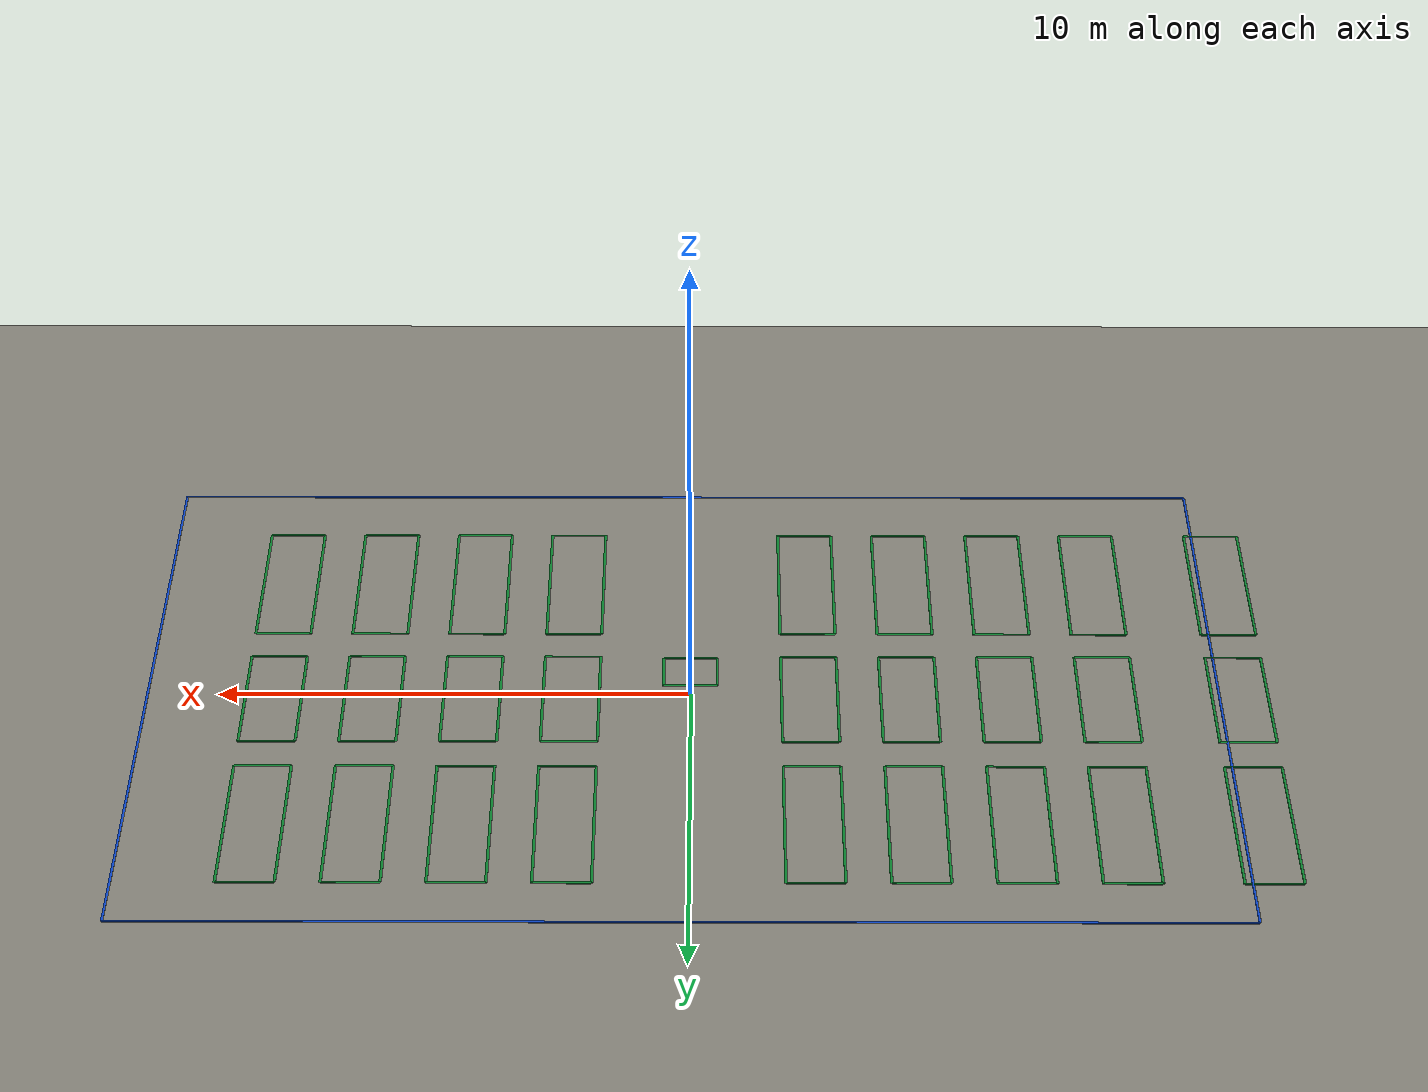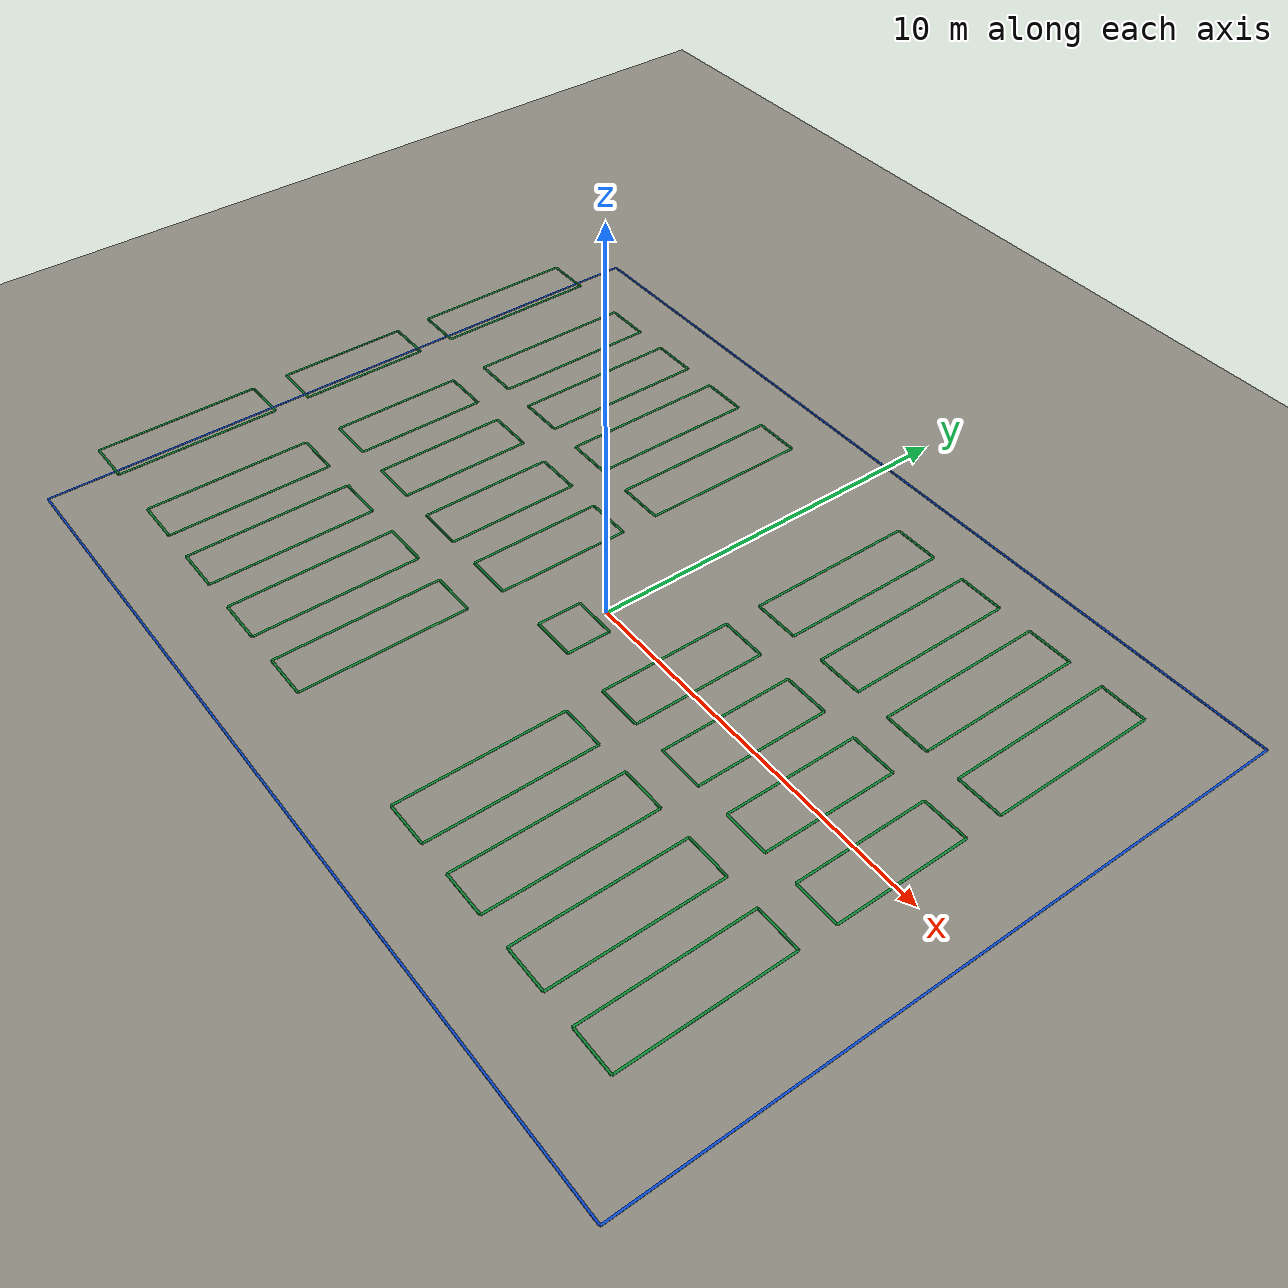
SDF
<sdf version="1.8">
 <world name="warehouse_full_4cam_recfg_lit">
  <model name="ground_plane">
   <static>true</static>
   <link name="link">
    <collision name="collision">
     <geometry><plane><normal>0 0 1</normal><size>24.5 20.5</size></plane></geometry>
    </collision>
    <visual name="visual">
     <geometry><plane><normal>0 0 1</normal><size>24.5 20.5</size></plane></geometry>
     <material>
      <ambient>0.56 0.55 0.51 1</ambient>
      <diffuse>0.56 0.55 0.51 1</diffuse>
      <specular>0.05 0.05 0.05 1</specular>
     </material>
    </visual>
   </link>
  </model>
  <model name="known_driveable_boundary">
   <static>true</static>
   <link name="bnd_s">
    <pose>0.150 -8.600 0.035 0 0 0</pose>
    <visual name="visual">
     <geometry><box><size>22.700 0.050 0.014</size></box></geometry>
     <material><ambient>0.05 0.30 0.85 1</ambient><diffuse>0.05 0.30 0.85 1</diffuse></material>
    </visual>
   </link>
   <link name="bnd_n">
    <pose>0.150 8.600 0.035 0 0 0</pose>
    <visual name="visual">
     <geometry><box><size>22.700 0.050 0.014</size></box></geometry>
     <material><ambient>0.05 0.30 0.85 1</ambient><diffuse>0.05 0.30 0.85 1</diffuse></material>
    </visual>
   </link>
   <link name="bnd_w">
    <pose>-11.200 0.000 0.035 0 0 0</pose>
    <visual name="visual">
     <geometry><box><size>0.050 17.200 0.014</size></box></geometry>
     <material><ambient>0.05 0.30 0.85 1</ambient><diffuse>0.05 0.30 0.85 1</diffuse></material>
    </visual>
   </link>
   <link name="bnd_e">
    <pose>11.500 0.000 0.035 0 0 0</pose>
    <visual name="visual">
     <geometry><box><size>0.050 17.200 0.014</size></box></geometry>
     <material><ambient>0.05 0.30 0.85 1</ambient><diffuse>0.05 0.30 0.85 1</diffuse></material>
    </visual>
   </link>
   <link name="nogo_W1_south_outline_s">
    <pose>-8.825 -6.820 0.035 0 0 0</pose>
    <visual name="visual">
     <geometry><box><size>1.190 0.055 0.014</size></box></geometry>
     <material><ambient>0.05 0.55 0.20 1</ambient><diffuse>0.05 0.55 0.20 1</diffuse></material>
    </visual>
   </link>
   <link name="nogo_W1_south_outline_n">
    <pose>-8.825 -2.480 0.035 0 0 0</pose>
    <visual name="visual">
     <geometry><box><size>1.190 0.055 0.014</size></box></geometry>
     <material><ambient>0.05 0.55 0.20 1</ambient><diffuse>0.05 0.55 0.20 1</diffuse></material>
    </visual>
   </link>
   <link name="nogo_W1_south_outline_w">
    <pose>-9.420 -4.650 0.035 0 0 0</pose>
    <visual name="visual">
     <geometry><box><size>0.055 4.340 0.014</size></box></geometry>
     <material><ambient>0.05 0.55 0.20 1</ambient><diffuse>0.05 0.55 0.20 1</diffuse></material>
    </visual>
   </link>
   <link name="nogo_W1_south_outline_e">
    <pose>-8.230 -4.650 0.035 0 0 0</pose>
    <visual name="visual">
     <geometry><box><size>0.055 4.340 0.014</size></box></geometry>
     <material><ambient>0.05 0.55 0.20 1</ambient><diffuse>0.05 0.55 0.20 1</diffuse></material>
    </visual>
   </link>
   <link name="nogo_W1_mid_outline_s">
    <pose>-8.825 -1.520 0.035 0 0 0</pose>
    <visual name="visual">
     <geometry><box><size>1.190 0.055 0.014</size></box></geometry>
     <material><ambient>0.05 0.55 0.20 1</ambient><diffuse>0.05 0.55 0.20 1</diffuse></material>
    </visual>
   </link>
   <link name="nogo_W1_mid_outline_n">
    <pose>-8.825 1.920 0.035 0 0 0</pose>
    <visual name="visual">
     <geometry><box><size>1.190 0.055 0.014</size></box></geometry>
     <material><ambient>0.05 0.55 0.20 1</ambient><diffuse>0.05 0.55 0.20 1</diffuse></material>
    </visual>
   </link>
   <link name="nogo_W1_mid_outline_w">
    <pose>-9.420 0.200 0.035 0 0 0</pose>
    <visual name="visual">
     <geometry><box><size>0.055 3.440 0.014</size></box></geometry>
     <material><ambient>0.05 0.55 0.20 1</ambient><diffuse>0.05 0.55 0.20 1</diffuse></material>
    </visual>
   </link>
   <link name="nogo_W1_mid_outline_e">
    <pose>-8.230 0.200 0.035 0 0 0</pose>
    <visual name="visual">
     <geometry><box><size>0.055 3.440 0.014</size></box></geometry>
     <material><ambient>0.05 0.55 0.20 1</ambient><diffuse>0.05 0.55 0.20 1</diffuse></material>
    </visual>
   </link>
   <link name="nogo_W1_north_outline_s">
    <pose>-8.825 2.880 0.035 0 0 0</pose>
    <visual name="visual">
     <geometry><box><size>1.190 0.055 0.014</size></box></geometry>
     <material><ambient>0.05 0.55 0.20 1</ambient><diffuse>0.05 0.55 0.20 1</diffuse></material>
    </visual>
   </link>
   <link name="nogo_W1_north_outline_n">
    <pose>-8.825 7.220 0.035 0 0 0</pose>
    <visual name="visual">
     <geometry><box><size>1.190 0.055 0.014</size></box></geometry>
     <material><ambient>0.05 0.55 0.20 1</ambient><diffuse>0.05 0.55 0.20 1</diffuse></material>
    </visual>
   </link>
   <link name="nogo_W1_north_outline_w">
    <pose>-9.420 5.050 0.035 0 0 0</pose>
    <visual name="visual">
     <geometry><box><size>0.055 4.340 0.014</size></box></geometry>
     <material><ambient>0.05 0.55 0.20 1</ambient><diffuse>0.05 0.55 0.20 1</diffuse></material>
    </visual>
   </link>
   <link name="nogo_W1_north_outline_e">
    <pose>-8.230 5.050 0.035 0 0 0</pose>
    <visual name="visual">
     <geometry><box><size>0.055 4.340 0.014</size></box></geometry>
     <material><ambient>0.05 0.55 0.20 1</ambient><diffuse>0.05 0.55 0.20 1</diffuse></material>
    </visual>
   </link>
   <link name="nogo_W2_south_outline_s">
    <pose>-6.725 -6.820 0.035 0 0 0</pose>
    <visual name="visual">
     <geometry><box><size>1.190 0.055 0.014</size></box></geometry>
     <material><ambient>0.05 0.55 0.20 1</ambient><diffuse>0.05 0.55 0.20 1</diffuse></material>
    </visual>
   </link>
   <link name="nogo_W2_south_outline_n">
    <pose>-6.725 -2.480 0.035 0 0 0</pose>
    <visual name="visual">
     <geometry><box><size>1.190 0.055 0.014</size></box></geometry>
     <material><ambient>0.05 0.55 0.20 1</ambient><diffuse>0.05 0.55 0.20 1</diffuse></material>
    </visual>
   </link>
   <link name="nogo_W2_south_outline_w">
    <pose>-7.320 -4.650 0.035 0 0 0</pose>
    <visual name="visual">
     <geometry><box><size>0.055 4.340 0.014</size></box></geometry>
     <material><ambient>0.05 0.55 0.20 1</ambient><diffuse>0.05 0.55 0.20 1</diffuse></material>
    </visual>
   </link>
   <link name="nogo_W2_south_outline_e">
    <pose>-6.130 -4.650 0.035 0 0 0</pose>
    <visual name="visual">
     <geometry><box><size>0.055 4.340 0.014</size></box></geometry>
     <material><ambient>0.05 0.55 0.20 1</ambient><diffuse>0.05 0.55 0.20 1</diffuse></material>
    </visual>
   </link>
   <link name="nogo_W2_mid_outline_s">
    <pose>-6.725 -1.520 0.035 0 0 0</pose>
    <visual name="visual">
     <geometry><box><size>1.190 0.055 0.014</size></box></geometry>
     <material><ambient>0.05 0.55 0.20 1</ambient><diffuse>0.05 0.55 0.20 1</diffuse></material>
    </visual>
   </link>
   <link name="nogo_W2_mid_outline_n">
    <pose>-6.725 1.920 0.035 0 0 0</pose>
    <visual name="visual">
     <geometry><box><size>1.190 0.055 0.014</size></box></geometry>
     <material><ambient>0.05 0.55 0.20 1</ambient><diffuse>0.05 0.55 0.20 1</diffuse></material>
    </visual>
   </link>
   <link name="nogo_W2_mid_outline_w">
    <pose>-7.320 0.200 0.035 0 0 0</pose>
    <visual name="visual">
     <geometry><box><size>0.055 3.440 0.014</size></box></geometry>
     <material><ambient>0.05 0.55 0.20 1</ambient><diffuse>0.05 0.55 0.20 1</diffuse></material>
    </visual>
   </link>
   <link name="nogo_W2_mid_outline_e">
    <pose>-6.130 0.200 0.035 0 0 0</pose>
    <visual name="visual">
     <geometry><box><size>0.055 3.440 0.014</size></box></geometry>
     <material><ambient>0.05 0.55 0.20 1</ambient><diffuse>0.05 0.55 0.20 1</diffuse></material>
    </visual>
   </link>
   <link name="nogo_W2_north_outline_s">
    <pose>-6.725 2.880 0.035 0 0 0</pose>
    <visual name="visual">
     <geometry><box><size>1.190 0.055 0.014</size></box></geometry>
     <material><ambient>0.05 0.55 0.20 1</ambient><diffuse>0.05 0.55 0.20 1</diffuse></material>
    </visual>
   </link>
   <link name="nogo_W2_north_outline_n">
    <pose>-6.725 7.220 0.035 0 0 0</pose>
    <visual name="visual">
     <geometry><box><size>1.190 0.055 0.014</size></box></geometry>
     <material><ambient>0.05 0.55 0.20 1</ambient><diffuse>0.05 0.55 0.20 1</diffuse></material>
    </visual>
   </link>
   <link name="nogo_W2_north_outline_w">
    <pose>-7.320 5.050 0.035 0 0 0</pose>
    <visual name="visual">
     <geometry><box><size>0.055 4.340 0.014</size></box></geometry>
     <material><ambient>0.05 0.55 0.20 1</ambient><diffuse>0.05 0.55 0.20 1</diffuse></material>
    </visual>
   </link>
   <link name="nogo_W2_north_outline_e">
    <pose>-6.130 5.050 0.035 0 0 0</pose>
    <visual name="visual">
     <geometry><box><size>0.055 4.340 0.014</size></box></geometry>
     <material><ambient>0.05 0.55 0.20 1</ambient><diffuse>0.05 0.55 0.20 1</diffuse></material>
    </visual>
   </link>
   <link name="nogo_W3_south_outline_s">
    <pose>-4.625 -6.820 0.035 0 0 0</pose>
    <visual name="visual">
     <geometry><box><size>1.190 0.055 0.014</size></box></geometry>
     <material><ambient>0.05 0.55 0.20 1</ambient><diffuse>0.05 0.55 0.20 1</diffuse></material>
    </visual>
   </link>
   <link name="nogo_W3_south_outline_n">
    <pose>-4.625 -2.480 0.035 0 0 0</pose>
    <visual name="visual">
     <geometry><box><size>1.190 0.055 0.014</size></box></geometry>
     <material><ambient>0.05 0.55 0.20 1</ambient><diffuse>0.05 0.55 0.20 1</diffuse></material>
    </visual>
   </link>
   <link name="nogo_W3_south_outline_w">
    <pose>-5.220 -4.650 0.035 0 0 0</pose>
    <visual name="visual">
     <geometry><box><size>0.055 4.340 0.014</size></box></geometry>
     <material><ambient>0.05 0.55 0.20 1</ambient><diffuse>0.05 0.55 0.20 1</diffuse></material>
    </visual>
   </link>
   <link name="nogo_W3_south_outline_e">
    <pose>-4.030 -4.650 0.035 0 0 0</pose>
    <visual name="visual">
     <geometry><box><size>0.055 4.340 0.014</size></box></geometry>
     <material><ambient>0.05 0.55 0.20 1</ambient><diffuse>0.05 0.55 0.20 1</diffuse></material>
    </visual>
   </link>
   <link name="nogo_W3_mid_outline_s">
    <pose>-4.625 -1.520 0.035 0 0 0</pose>
    <visual name="visual">
     <geometry><box><size>1.190 0.055 0.014</size></box></geometry>
     <material><ambient>0.05 0.55 0.20 1</ambient><diffuse>0.05 0.55 0.20 1</diffuse></material>
    </visual>
   </link>
   <link name="nogo_W3_mid_outline_n">
    <pose>-4.625 1.920 0.035 0 0 0</pose>
    <visual name="visual">
     <geometry><box><size>1.190 0.055 0.014</size></box></geometry>
     <material><ambient>0.05 0.55 0.20 1</ambient><diffuse>0.05 0.55 0.20 1</diffuse></material>
    </visual>
   </link>
   <link name="nogo_W3_mid_outline_w">
    <pose>-5.220 0.200 0.035 0 0 0</pose>
    <visual name="visual">
     <geometry><box><size>0.055 3.440 0.014</size></box></geometry>
     <material><ambient>0.05 0.55 0.20 1</ambient><diffuse>0.05 0.55 0.20 1</diffuse></material>
    </visual>
   </link>
   <link name="nogo_W3_mid_outline_e">
    <pose>-4.030 0.200 0.035 0 0 0</pose>
    <visual name="visual">
     <geometry><box><size>0.055 3.440 0.014</size></box></geometry>
     <material><ambient>0.05 0.55 0.20 1</ambient><diffuse>0.05 0.55 0.20 1</diffuse></material>
    </visual>
   </link>
   <link name="nogo_W3_north_outline_s">
    <pose>-4.625 2.880 0.035 0 0 0</pose>
    <visual name="visual">
     <geometry><box><size>1.190 0.055 0.014</size></box></geometry>
     <material><ambient>0.05 0.55 0.20 1</ambient><diffuse>0.05 0.55 0.20 1</diffuse></material>
    </visual>
   </link>
   <link name="nogo_W3_north_outline_n">
    <pose>-4.625 7.220 0.035 0 0 0</pose>
    <visual name="visual">
     <geometry><box><size>1.190 0.055 0.014</size></box></geometry>
     <material><ambient>0.05 0.55 0.20 1</ambient><diffuse>0.05 0.55 0.20 1</diffuse></material>
    </visual>
   </link>
   <link name="nogo_W3_north_outline_w">
    <pose>-5.220 5.050 0.035 0 0 0</pose>
    <visual name="visual">
     <geometry><box><size>0.055 4.340 0.014</size></box></geometry>
     <material><ambient>0.05 0.55 0.20 1</ambient><diffuse>0.05 0.55 0.20 1</diffuse></material>
    </visual>
   </link>
   <link name="nogo_W3_north_outline_e">
    <pose>-4.030 5.050 0.035 0 0 0</pose>
    <visual name="visual">
     <geometry><box><size>0.055 4.340 0.014</size></box></geometry>
     <material><ambient>0.05 0.55 0.20 1</ambient><diffuse>0.05 0.55 0.20 1</diffuse></material>
    </visual>
   </link>
   <link name="nogo_W4_south_outline_s">
    <pose>-2.525 -6.820 0.035 0 0 0</pose>
    <visual name="visual">
     <geometry><box><size>1.190 0.055 0.014</size></box></geometry>
     <material><ambient>0.05 0.55 0.20 1</ambient><diffuse>0.05 0.55 0.20 1</diffuse></material>
    </visual>
   </link>
   <link name="nogo_W4_south_outline_n">
    <pose>-2.525 -2.480 0.035 0 0 0</pose>
    <visual name="visual">
     <geometry><box><size>1.190 0.055 0.014</size></box></geometry>
     <material><ambient>0.05 0.55 0.20 1</ambient><diffuse>0.05 0.55 0.20 1</diffuse></material>
    </visual>
   </link>
   <link name="nogo_W4_south_outline_w">
    <pose>-3.120 -4.650 0.035 0 0 0</pose>
    <visual name="visual">
     <geometry><box><size>0.055 4.340 0.014</size></box></geometry>
     <material><ambient>0.05 0.55 0.20 1</ambient><diffuse>0.05 0.55 0.20 1</diffuse></material>
    </visual>
   </link>
   <link name="nogo_W4_south_outline_e">
    <pose>-1.930 -4.650 0.035 0 0 0</pose>
    <visual name="visual">
     <geometry><box><size>0.055 4.340 0.014</size></box></geometry>
     <material><ambient>0.05 0.55 0.20 1</ambient><diffuse>0.05 0.55 0.20 1</diffuse></material>
    </visual>
   </link>
   <link name="nogo_W4_mid_outline_s">
    <pose>-2.525 -1.520 0.035 0 0 0</pose>
    <visual name="visual">
     <geometry><box><size>1.190 0.055 0.014</size></box></geometry>
     <material><ambient>0.05 0.55 0.20 1</ambient><diffuse>0.05 0.55 0.20 1</diffuse></material>
    </visual>
   </link>
   <link name="nogo_W4_mid_outline_n">
    <pose>-2.525 1.920 0.035 0 0 0</pose>
    <visual name="visual">
     <geometry><box><size>1.190 0.055 0.014</size></box></geometry>
     <material><ambient>0.05 0.55 0.20 1</ambient><diffuse>0.05 0.55 0.20 1</diffuse></material>
    </visual>
   </link>
   <link name="nogo_W4_mid_outline_w">
    <pose>-3.120 0.200 0.035 0 0 0</pose>
    <visual name="visual">
     <geometry><box><size>0.055 3.440 0.014</size></box></geometry>
     <material><ambient>0.05 0.55 0.20 1</ambient><diffuse>0.05 0.55 0.20 1</diffuse></material>
    </visual>
   </link>
   <link name="nogo_W4_mid_outline_e">
    <pose>-1.930 0.200 0.035 0 0 0</pose>
    <visual name="visual">
     <geometry><box><size>0.055 3.440 0.014</size></box></geometry>
     <material><ambient>0.05 0.55 0.20 1</ambient><diffuse>0.05 0.55 0.20 1</diffuse></material>
    </visual>
   </link>
   <link name="nogo_W4_north_outline_s">
    <pose>-2.525 2.880 0.035 0 0 0</pose>
    <visual name="visual">
     <geometry><box><size>1.190 0.055 0.014</size></box></geometry>
     <material><ambient>0.05 0.55 0.20 1</ambient><diffuse>0.05 0.55 0.20 1</diffuse></material>
    </visual>
   </link>
   <link name="nogo_W4_north_outline_n">
    <pose>-2.525 7.220 0.035 0 0 0</pose>
    <visual name="visual">
     <geometry><box><size>1.190 0.055 0.014</size></box></geometry>
     <material><ambient>0.05 0.55 0.20 1</ambient><diffuse>0.05 0.55 0.20 1</diffuse></material>
    </visual>
   </link>
   <link name="nogo_W4_north_outline_w">
    <pose>-3.120 5.050 0.035 0 0 0</pose>
    <visual name="visual">
     <geometry><box><size>0.055 4.340 0.014</size></box></geometry>
     <material><ambient>0.05 0.55 0.20 1</ambient><diffuse>0.05 0.55 0.20 1</diffuse></material>
    </visual>
   </link>
   <link name="nogo_W4_north_outline_e">
    <pose>-1.930 5.050 0.035 0 0 0</pose>
    <visual name="visual">
     <geometry><box><size>0.055 4.340 0.014</size></box></geometry>
     <material><ambient>0.05 0.55 0.20 1</ambient><diffuse>0.05 0.55 0.20 1</diffuse></material>
    </visual>
   </link>
   <link name="nogo_E1_south_outline_s">
    <pose>2.525 -6.820 0.035 0 0 0</pose>
    <visual name="visual">
     <geometry><box><size>1.190 0.055 0.014</size></box></geometry>
     <material><ambient>0.05 0.55 0.20 1</ambient><diffuse>0.05 0.55 0.20 1</diffuse></material>
    </visual>
   </link>
   <link name="nogo_E1_south_outline_n">
    <pose>2.525 -2.480 0.035 0 0 0</pose>
    <visual name="visual">
     <geometry><box><size>1.190 0.055 0.014</size></box></geometry>
     <material><ambient>0.05 0.55 0.20 1</ambient><diffuse>0.05 0.55 0.20 1</diffuse></material>
    </visual>
   </link>
   <link name="nogo_E1_south_outline_w">
    <pose>1.930 -4.650 0.035 0 0 0</pose>
    <visual name="visual">
     <geometry><box><size>0.055 4.340 0.014</size></box></geometry>
     <material><ambient>0.05 0.55 0.20 1</ambient><diffuse>0.05 0.55 0.20 1</diffuse></material>
    </visual>
   </link>
   <link name="nogo_E1_south_outline_e">
    <pose>3.120 -4.650 0.035 0 0 0</pose>
    <visual name="visual">
     <geometry><box><size>0.055 4.340 0.014</size></box></geometry>
     <material><ambient>0.05 0.55 0.20 1</ambient><diffuse>0.05 0.55 0.20 1</diffuse></material>
    </visual>
   </link>
   <link name="nogo_E1_mid_outline_s">
    <pose>2.525 -1.520 0.035 0 0 0</pose>
    <visual name="visual">
     <geometry><box><size>1.190 0.055 0.014</size></box></geometry>
     <material><ambient>0.05 0.55 0.20 1</ambient><diffuse>0.05 0.55 0.20 1</diffuse></material>
    </visual>
   </link>
   <link name="nogo_E1_mid_outline_n">
    <pose>2.525 1.920 0.035 0 0 0</pose>
    <visual name="visual">
     <geometry><box><size>1.190 0.055 0.014</size></box></geometry>
     <material><ambient>0.05 0.55 0.20 1</ambient><diffuse>0.05 0.55 0.20 1</diffuse></material>
    </visual>
   </link>
   <link name="nogo_E1_mid_outline_w">
    <pose>1.930 0.200 0.035 0 0 0</pose>
    <visual name="visual">
     <geometry><box><size>0.055 3.440 0.014</size></box></geometry>
     <material><ambient>0.05 0.55 0.20 1</ambient><diffuse>0.05 0.55 0.20 1</diffuse></material>
    </visual>
   </link>
   <link name="nogo_E1_mid_outline_e">
    <pose>3.120 0.200 0.035 0 0 0</pose>
    <visual name="visual">
     <geometry><box><size>0.055 3.440 0.014</size></box></geometry>
     <material><ambient>0.05 0.55 0.20 1</ambient><diffuse>0.05 0.55 0.20 1</diffuse></material>
    </visual>
   </link>
   <link name="nogo_E1_north_outline_s">
    <pose>2.525 2.880 0.035 0 0 0</pose>
    <visual name="visual">
     <geometry><box><size>1.190 0.055 0.014</size></box></geometry>
     <material><ambient>0.05 0.55 0.20 1</ambient><diffuse>0.05 0.55 0.20 1</diffuse></material>
    </visual>
   </link>
   <link name="nogo_E1_north_outline_n">
    <pose>2.525 7.220 0.035 0 0 0</pose>
    <visual name="visual">
     <geometry><box><size>1.190 0.055 0.014</size></box></geometry>
     <material><ambient>0.05 0.55 0.20 1</ambient><diffuse>0.05 0.55 0.20 1</diffuse></material>
    </visual>
   </link>
   <link name="nogo_E1_north_outline_w">
    <pose>1.930 5.050 0.035 0 0 0</pose>
    <visual name="visual">
     <geometry><box><size>0.055 4.340 0.014</size></box></geometry>
     <material><ambient>0.05 0.55 0.20 1</ambient><diffuse>0.05 0.55 0.20 1</diffuse></material>
    </visual>
   </link>
   <link name="nogo_E1_north_outline_e">
    <pose>3.120 5.050 0.035 0 0 0</pose>
    <visual name="visual">
     <geometry><box><size>0.055 4.340 0.014</size></box></geometry>
     <material><ambient>0.05 0.55 0.20 1</ambient><diffuse>0.05 0.55 0.20 1</diffuse></material>
    </visual>
   </link>
   <link name="nogo_E2_south_outline_s">
    <pose>4.625 -6.820 0.035 0 0 0</pose>
    <visual name="visual">
     <geometry><box><size>1.190 0.055 0.014</size></box></geometry>
     <material><ambient>0.05 0.55 0.20 1</ambient><diffuse>0.05 0.55 0.20 1</diffuse></material>
    </visual>
   </link>
   <link name="nogo_E2_south_outline_n">
    <pose>4.625 -2.480 0.035 0 0 0</pose>
    <visual name="visual">
     <geometry><box><size>1.190 0.055 0.014</size></box></geometry>
     <material><ambient>0.05 0.55 0.20 1</ambient><diffuse>0.05 0.55 0.20 1</diffuse></material>
    </visual>
   </link>
   <link name="nogo_E2_south_outline_w">
    <pose>4.030 -4.650 0.035 0 0 0</pose>
    <visual name="visual">
     <geometry><box><size>0.055 4.340 0.014</size></box></geometry>
     <material><ambient>0.05 0.55 0.20 1</ambient><diffuse>0.05 0.55 0.20 1</diffuse></material>
    </visual>
   </link>
   <link name="nogo_E2_south_outline_e">
    <pose>5.220 -4.650 0.035 0 0 0</pose>
    <visual name="visual">
     <geometry><box><size>0.055 4.340 0.014</size></box></geometry>
     <material><ambient>0.05 0.55 0.20 1</ambient><diffuse>0.05 0.55 0.20 1</diffuse></material>
    </visual>
   </link>
   <link name="nogo_E2_mid_outline_s">
    <pose>4.625 -1.520 0.035 0 0 0</pose>
    <visual name="visual">
     <geometry><box><size>1.190 0.055 0.014</size></box></geometry>
     <material><ambient>0.05 0.55 0.20 1</ambient><diffuse>0.05 0.55 0.20 1</diffuse></material>
    </visual>
   </link>
   <link name="nogo_E2_mid_outline_n">
    <pose>4.625 1.920 0.035 0 0 0</pose>
    <visual name="visual">
     <geometry><box><size>1.190 0.055 0.014</size></box></geometry>
     <material><ambient>0.05 0.55 0.20 1</ambient><diffuse>0.05 0.55 0.20 1</diffuse></material>
    </visual>
   </link>
   <link name="nogo_E2_mid_outline_w">
    <pose>4.030 0.200 0.035 0 0 0</pose>
    <visual name="visual">
     <geometry><box><size>0.055 3.440 0.014</size></box></geometry>
     <material><ambient>0.05 0.55 0.20 1</ambient><diffuse>0.05 0.55 0.20 1</diffuse></material>
    </visual>
   </link>
   <link name="nogo_E2_mid_outline_e">
    <pose>5.220 0.200 0.035 0 0 0</pose>
    <visual name="visual">
     <geometry><box><size>0.055 3.440 0.014</size></box></geometry>
     <material><ambient>0.05 0.55 0.20 1</ambient><diffuse>0.05 0.55 0.20 1</diffuse></material>
    </visual>
   </link>
   <link name="nogo_E2_north_outline_s">
    <pose>4.625 2.880 0.035 0 0 0</pose>
    <visual name="visual">
     <geometry><box><size>1.190 0.055 0.014</size></box></geometry>
     <material><ambient>0.05 0.55 0.20 1</ambient><diffuse>0.05 0.55 0.20 1</diffuse></material>
    </visual>
   </link>
   <link name="nogo_E2_north_outline_n">
    <pose>4.625 7.220 0.035 0 0 0</pose>
    <visual name="visual">
     <geometry><box><size>1.190 0.055 0.014</size></box></geometry>
     <material><ambient>0.05 0.55 0.20 1</ambient><diffuse>0.05 0.55 0.20 1</diffuse></material>
    </visual>
   </link>
   <link name="nogo_E2_north_outline_w">
    <pose>4.030 5.050 0.035 0 0 0</pose>
    <visual name="visual">
     <geometry><box><size>0.055 4.340 0.014</size></box></geometry>
     <material><ambient>0.05 0.55 0.20 1</ambient><diffuse>0.05 0.55 0.20 1</diffuse></material>
    </visual>
   </link>
   <link name="nogo_E2_north_outline_e">
    <pose>5.220 5.050 0.035 0 0 0</pose>
    <visual name="visual">
     <geometry><box><size>0.055 4.340 0.014</size></box></geometry>
     <material><ambient>0.05 0.55 0.20 1</ambient><diffuse>0.05 0.55 0.20 1</diffuse></material>
    </visual>
   </link>
   <link name="nogo_E3_south_outline_s">
    <pose>6.725 -6.820 0.035 0 0 0</pose>
    <visual name="visual">
     <geometry><box><size>1.190 0.055 0.014</size></box></geometry>
     <material><ambient>0.05 0.55 0.20 1</ambient><diffuse>0.05 0.55 0.20 1</diffuse></material>
    </visual>
   </link>
   <link name="nogo_E3_south_outline_n">
    <pose>6.725 -2.480 0.035 0 0 0</pose>
    <visual name="visual">
     <geometry><box><size>1.190 0.055 0.014</size></box></geometry>
     <material><ambient>0.05 0.55 0.20 1</ambient><diffuse>0.05 0.55 0.20 1</diffuse></material>
    </visual>
   </link>
   <link name="nogo_E3_south_outline_w">
    <pose>6.130 -4.650 0.035 0 0 0</pose>
    <visual name="visual">
     <geometry><box><size>0.055 4.340 0.014</size></box></geometry>
     <material><ambient>0.05 0.55 0.20 1</ambient><diffuse>0.05 0.55 0.20 1</diffuse></material>
    </visual>
   </link>
   <link name="nogo_E3_south_outline_e">
    <pose>7.320 -4.650 0.035 0 0 0</pose>
    <visual name="visual">
     <geometry><box><size>0.055 4.340 0.014</size></box></geometry>
     <material><ambient>0.05 0.55 0.20 1</ambient><diffuse>0.05 0.55 0.20 1</diffuse></material>
    </visual>
   </link>
   <link name="nogo_E3_mid_outline_s">
    <pose>6.725 -1.520 0.035 0 0 0</pose>
    <visual name="visual">
     <geometry><box><size>1.190 0.055 0.014</size></box></geometry>
     <material><ambient>0.05 0.55 0.20 1</ambient><diffuse>0.05 0.55 0.20 1</diffuse></material>
    </visual>
   </link>
   <link name="nogo_E3_mid_outline_n">
    <pose>6.725 1.920 0.035 0 0 0</pose>
    <visual name="visual">
     <geometry><box><size>1.190 0.055 0.014</size></box></geometry>
     <material><ambient>0.05 0.55 0.20 1</ambient><diffuse>0.05 0.55 0.20 1</diffuse></material>
    </visual>
   </link>
   <link name="nogo_E3_mid_outline_w">
    <pose>6.130 0.200 0.035 0 0 0</pose>
    <visual name="visual">
     <geometry><box><size>0.055 3.440 0.014</size></box></geometry>
     <material><ambient>0.05 0.55 0.20 1</ambient><diffuse>0.05 0.55 0.20 1</diffuse></material>
    </visual>
   </link>
   <link name="nogo_E3_mid_outline_e">
    <pose>7.320 0.200 0.035 0 0 0</pose>
    <visual name="visual">
     <geometry><box><size>0.055 3.440 0.014</size></box></geometry>
     <material><ambient>0.05 0.55 0.20 1</ambient><diffuse>0.05 0.55 0.20 1</diffuse></material>
    </visual>
   </link>
   <link name="nogo_E3_north_outline_s">
    <pose>6.725 2.880 0.035 0 0 0</pose>
    <visual name="visual">
     <geometry><box><size>1.190 0.055 0.014</size></box></geometry>
     <material><ambient>0.05 0.55 0.20 1</ambient><diffuse>0.05 0.55 0.20 1</diffuse></material>
    </visual>
   </link>
   <link name="nogo_E3_north_outline_n">
    <pose>6.725 7.220 0.035 0 0 0</pose>
    <visual name="visual">
     <geometry><box><size>1.190 0.055 0.014</size></box></geometry>
     <material><ambient>0.05 0.55 0.20 1</ambient><diffuse>0.05 0.55 0.20 1</diffuse></material>
    </visual>
   </link>
   <link name="nogo_E3_north_outline_w">
    <pose>6.130 5.050 0.035 0 0 0</pose>
    <visual name="visual">
     <geometry><box><size>0.055 4.340 0.014</size></box></geometry>
     <material><ambient>0.05 0.55 0.20 1</ambient><diffuse>0.05 0.55 0.20 1</diffuse></material>
    </visual>
   </link>
   <link name="nogo_E3_north_outline_e">
    <pose>7.320 5.050 0.035 0 0 0</pose>
    <visual name="visual">
     <geometry><box><size>0.055 4.340 0.014</size></box></geometry>
     <material><ambient>0.05 0.55 0.20 1</ambient><diffuse>0.05 0.55 0.20 1</diffuse></material>
    </visual>
   </link>
   <link name="nogo_E4_south_outline_s">
    <pose>8.825 -6.820 0.035 0 0 0</pose>
    <visual name="visual">
     <geometry><box><size>1.190 0.055 0.014</size></box></geometry>
     <material><ambient>0.05 0.55 0.20 1</ambient><diffuse>0.05 0.55 0.20 1</diffuse></material>
    </visual>
   </link>
   <link name="nogo_E4_south_outline_n">
    <pose>8.825 -2.480 0.035 0 0 0</pose>
    <visual name="visual">
     <geometry><box><size>1.190 0.055 0.014</size></box></geometry>
     <material><ambient>0.05 0.55 0.20 1</ambient><diffuse>0.05 0.55 0.20 1</diffuse></material>
    </visual>
   </link>
   <link name="nogo_E4_south_outline_w">
    <pose>8.230 -4.650 0.035 0 0 0</pose>
    <visual name="visual">
     <geometry><box><size>0.055 4.340 0.014</size></box></geometry>
     <material><ambient>0.05 0.55 0.20 1</ambient><diffuse>0.05 0.55 0.20 1</diffuse></material>
    </visual>
   </link>
   <link name="nogo_E4_south_outline_e">
    <pose>9.420 -4.650 0.035 0 0 0</pose>
    <visual name="visual">
     <geometry><box><size>0.055 4.340 0.014</size></box></geometry>
     <material><ambient>0.05 0.55 0.20 1</ambient><diffuse>0.05 0.55 0.20 1</diffuse></material>
    </visual>
   </link>
   <link name="nogo_E4_mid_outline_s">
    <pose>8.825 -1.520 0.035 0 0 0</pose>
    <visual name="visual">
     <geometry><box><size>1.190 0.055 0.014</size></box></geometry>
     <material><ambient>0.05 0.55 0.20 1</ambient><diffuse>0.05 0.55 0.20 1</diffuse></material>
    </visual>
   </link>
   <link name="nogo_E4_mid_outline_n">
    <pose>8.825 1.920 0.035 0 0 0</pose>
    <visual name="visual">
     <geometry><box><size>1.190 0.055 0.014</size></box></geometry>
     <material><ambient>0.05 0.55 0.20 1</ambient><diffuse>0.05 0.55 0.20 1</diffuse></material>
    </visual>
   </link>
   <link name="nogo_E4_mid_outline_w">
    <pose>8.230 0.200 0.035 0 0 0</pose>
    <visual name="visual">
     <geometry><box><size>0.055 3.440 0.014</size></box></geometry>
     <material><ambient>0.05 0.55 0.20 1</ambient><diffuse>0.05 0.55 0.20 1</diffuse></material>
    </visual>
   </link>
   <link name="nogo_E4_mid_outline_e">
    <pose>9.420 0.200 0.035 0 0 0</pose>
    <visual name="visual">
     <geometry><box><size>0.055 3.440 0.014</size></box></geometry>
     <material><ambient>0.05 0.55 0.20 1</ambient><diffuse>0.05 0.55 0.20 1</diffuse></material>
    </visual>
   </link>
   <link name="nogo_E4_north_outline_s">
    <pose>8.825 2.880 0.035 0 0 0</pose>
    <visual name="visual">
     <geometry><box><size>1.190 0.055 0.014</size></box></geometry>
     <material><ambient>0.05 0.55 0.20 1</ambient><diffuse>0.05 0.55 0.20 1</diffuse></material>
    </visual>
   </link>
   <link name="nogo_E4_north_outline_n">
    <pose>8.825 7.220 0.035 0 0 0</pose>
    <visual name="visual">
     <geometry><box><size>1.190 0.055 0.014</size></box></geometry>
     <material><ambient>0.05 0.55 0.20 1</ambient><diffuse>0.05 0.55 0.20 1</diffuse></material>
    </visual>
   </link>
   <link name="nogo_E4_north_outline_w">
    <pose>8.230 5.050 0.035 0 0 0</pose>
    <visual name="visual">
     <geometry><box><size>0.055 4.340 0.014</size></box></geometry>
     <material><ambient>0.05 0.55 0.20 1</ambient><diffuse>0.05 0.55 0.20 1</diffuse></material>
    </visual>
   </link>
   <link name="nogo_E4_north_outline_e">
    <pose>9.420 5.050 0.035 0 0 0</pose>
    <visual name="visual">
     <geometry><box><size>0.055 4.340 0.014</size></box></geometry>
     <material><ambient>0.05 0.55 0.20 1</ambient><diffuse>0.05 0.55 0.20 1</diffuse></material>
    </visual>
   </link>
   <link name="nogo_W0_south_outline_s">
    <pose>-11.635 -6.820 0.035 0 0 0</pose>
    <visual name="visual">
     <geometry><box><size>1.190 0.055 0.014</size></box></geometry>
     <material><ambient>0.05 0.55 0.20 1</ambient><diffuse>0.05 0.55 0.20 1</diffuse></material>
    </visual>
   </link>
   <link name="nogo_W0_south_outline_n">
    <pose>-11.635 -2.480 0.035 0 0 0</pose>
    <visual name="visual">
     <geometry><box><size>1.190 0.055 0.014</size></box></geometry>
     <material><ambient>0.05 0.55 0.20 1</ambient><diffuse>0.05 0.55 0.20 1</diffuse></material>
    </visual>
   </link>
   <link name="nogo_W0_south_outline_w">
    <pose>-12.230 -4.650 0.035 0 0 0</pose>
    <visual name="visual">
     <geometry><box><size>0.055 4.340 0.014</size></box></geometry>
     <material><ambient>0.05 0.55 0.20 1</ambient><diffuse>0.05 0.55 0.20 1</diffuse></material>
    </visual>
   </link>
   <link name="nogo_W0_south_outline_e">
    <pose>-11.040 -4.650 0.035 0 0 0</pose>
    <visual name="visual">
     <geometry><box><size>0.055 4.340 0.014</size></box></geometry>
     <material><ambient>0.05 0.55 0.20 1</ambient><diffuse>0.05 0.55 0.20 1</diffuse></material>
    </visual>
   </link>
   <link name="nogo_W0_mid_outline_s">
    <pose>-11.635 -1.520 0.035 0 0 0</pose>
    <visual name="visual">
     <geometry><box><size>1.190 0.055 0.014</size></box></geometry>
     <material><ambient>0.05 0.55 0.20 1</ambient><diffuse>0.05 0.55 0.20 1</diffuse></material>
    </visual>
   </link>
   <link name="nogo_W0_mid_outline_n">
    <pose>-11.635 1.920 0.035 0 0 0</pose>
    <visual name="visual">
     <geometry><box><size>1.190 0.055 0.014</size></box></geometry>
     <material><ambient>0.05 0.55 0.20 1</ambient><diffuse>0.05 0.55 0.20 1</diffuse></material>
    </visual>
   </link>
   <link name="nogo_W0_mid_outline_w">
    <pose>-12.230 0.200 0.035 0 0 0</pose>
    <visual name="visual">
     <geometry><box><size>0.055 3.440 0.014</size></box></geometry>
     <material><ambient>0.05 0.55 0.20 1</ambient><diffuse>0.05 0.55 0.20 1</diffuse></material>
    </visual>
   </link>
   <link name="nogo_W0_mid_outline_e">
    <pose>-11.040 0.200 0.035 0 0 0</pose>
    <visual name="visual">
     <geometry><box><size>0.055 3.440 0.014</size></box></geometry>
     <material><ambient>0.05 0.55 0.20 1</ambient><diffuse>0.05 0.55 0.20 1</diffuse></material>
    </visual>
   </link>
   <link name="nogo_W0_north_outline_s">
    <pose>-11.635 2.880 0.035 0 0 0</pose>
    <visual name="visual">
     <geometry><box><size>1.190 0.055 0.014</size></box></geometry>
     <material><ambient>0.05 0.55 0.20 1</ambient><diffuse>0.05 0.55 0.20 1</diffuse></material>
    </visual>
   </link>
   <link name="nogo_W0_north_outline_n">
    <pose>-11.635 7.220 0.035 0 0 0</pose>
    <visual name="visual">
     <geometry><box><size>1.190 0.055 0.014</size></box></geometry>
     <material><ambient>0.05 0.55 0.20 1</ambient><diffuse>0.05 0.55 0.20 1</diffuse></material>
    </visual>
   </link>
   <link name="nogo_W0_north_outline_w">
    <pose>-12.230 5.050 0.035 0 0 0</pose>
    <visual name="visual">
     <geometry><box><size>0.055 4.340 0.014</size></box></geometry>
     <material><ambient>0.05 0.55 0.20 1</ambient><diffuse>0.05 0.55 0.20 1</diffuse></material>
    </visual>
   </link>
   <link name="nogo_W0_north_outline_e">
    <pose>-11.040 5.050 0.035 0 0 0</pose>
    <visual name="visual">
     <geometry><box><size>0.055 4.340 0.014</size></box></geometry>
     <material><ambient>0.05 0.55 0.20 1</ambient><diffuse>0.05 0.55 0.20 1</diffuse></material>
    </visual>
   </link>
   <link name="nogo_support_pillar_outline_s">
    <pose>0.000 -1.470 0.035 0 0 0</pose>
    <visual name="visual">
     <geometry><box><size>1.140 0.055 0.014</size></box></geometry>
     <material><ambient>0.05 0.55 0.20 1</ambient><diffuse>0.05 0.55 0.20 1</diffuse></material>
    </visual>
   </link>
   <link name="nogo_support_pillar_outline_n">
    <pose>0.000 -0.330 0.035 0 0 0</pose>
    <visual name="visual">
     <geometry><box><size>1.140 0.055 0.014</size></box></geometry>
     <material><ambient>0.05 0.55 0.20 1</ambient><diffuse>0.05 0.55 0.20 1</diffuse></material>
    </visual>
   </link>
   <link name="nogo_support_pillar_outline_w">
    <pose>-0.570 -0.900 0.035 0 0 0</pose>
    <visual name="visual">
     <geometry><box><size>0.055 1.140 0.014</size></box></geometry>
     <material><ambient>0.05 0.55 0.20 1</ambient><diffuse>0.05 0.55 0.20 1</diffuse></material>
    </visual>
   </link>
   <link name="nogo_support_pillar_outline_e">
    <pose>0.570 -0.900 0.035 0 0 0</pose>
    <visual name="visual">
     <geometry><box><size>0.055 1.140 0.014</size></box></geometry>
     <material><ambient>0.05 0.55 0.20 1</ambient><diffuse>0.05 0.55 0.20 1</diffuse></material>
    </visual>
   </link>
  </model>
  <include>
   <name>external_camera_b</name>
   <uri>model://external_camera_b</uri>
   <pose>-6.00 10.00 6.10 0 0.92 -1.5708</pose>
  </include>
  <include>
   <name>external_camera_d</name>
   <uri>model://external_camera_d</uri>
   <pose>6.00 10.00 6.10 0 0.92 -1.5708</pose>
  </include>
 </world>
</sdf>
